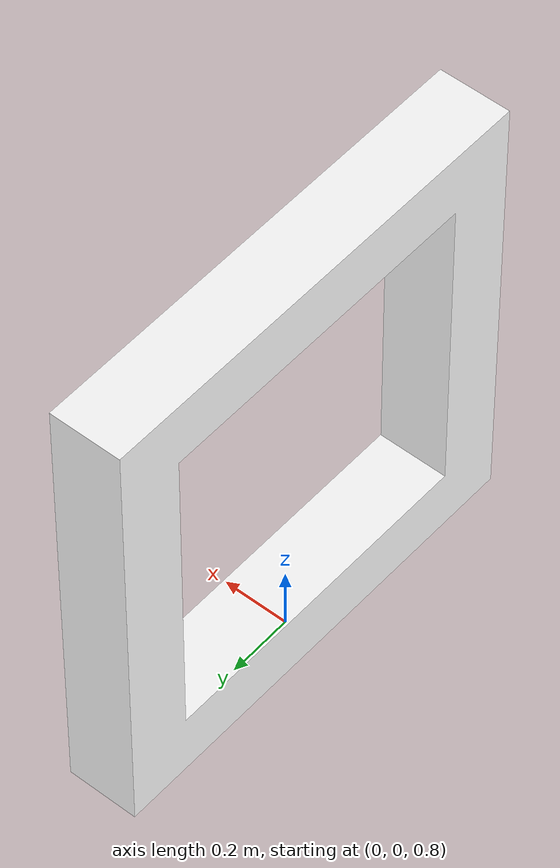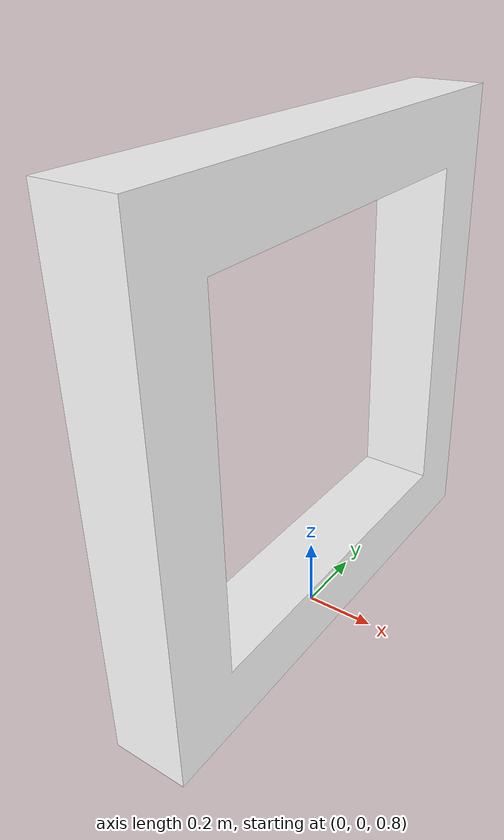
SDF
<?xml version="1.0"?>
<sdf version="1.6">
  <model name="task_5_gate">
    <pose>0 0 0 0 0 0</pose>
    <static>true</static>
    <link name="link">

      <!-- Visualización del modelo -->
      <visual name="visual">
        <geometry>
          <mesh>
            <uri>model://task_5_gate/meshes/task_5_gate.dae</uri>
            <scale>1 1 1</scale>
          </mesh>
        </geometry>
      </visual>

      <!-- Colisión usando el mismo modelo DAE -->
      <collision name="collision">
        <geometry>
          <mesh>
            <uri>model://task_5_gate/meshes/task_5_gate.dae</uri>
            <scale>1 1 1</scale>
          </mesh>
        </geometry>
      </collision>

    </link>
  </model>
</sdf>
